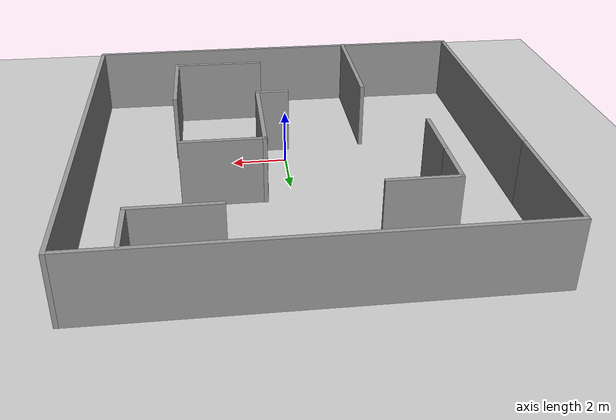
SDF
<sdf version="1.7">
 <world name="default">
  <light name="sun" type="directional">
   <pose>0 0 10 0 -0 0</pose>
   <diffuse>0.8 0.8 0.8 1</diffuse>
   <specular>0.2 0.2 0.2 1</specular>
   <attenuation>
    <range>1000</range>
    <constant>0.9</constant>
    <linear>0.01</linear>
    <quadratic>0.001</quadratic>
   </attenuation>
   <direction>-0.5 0.1 -0.9</direction>
   <spot><inner_angle>0</inner_angle><outer_angle>0</outer_angle><falloff>0</falloff></spot>
  </light>
  <model name="ground_plane">
   <static>1</static>
   <link name="link">
    <collision name="collision">
     <geometry><plane><normal>0 0 1</normal><size>100 100</size></plane></geometry>
     <surface>
      <contact><collide_bitmask>65535</collide_bitmask></contact>
      <friction><ode><mu>100</mu><mu2>50</mu2></ode></friction>
     </surface>
    </collision>
    <visual name="visual">
     <cast_shadows>0</cast_shadows>
     <geometry><plane><normal>0 0 1</normal><size>100 100</size></plane></geometry>
     <material>
      <script><uri>file://media/materials/scripts/gazebo.material</uri><name>Gazebo/Grey</name></script>
     </material>
    </visual>
   </link>
  </model>
  <gravity>0 0 -9.8</gravity>
  <magnetic_field>6e-06 2.3e-05 -4.2e-05</magnetic_field>
  <atmosphere type="adiabatic"/>
  <physics type="ode">
   <max_step_size>0.001</max_step_size>
   <real_time_factor>1</real_time_factor>
   <real_time_update_rate>1000</real_time_update_rate>
  </physics>
  <scene><ambient>0.4 0.4 0.4 1</ambient><background>0.7 0.7 0.7 1</background><shadows>1</shadows></scene>
  <audio><device>default</device></audio>
  <spherical_coordinates>
   <surface_model>EARTH_WGS84</surface_model>
   <latitude_deg>0</latitude_deg>
   <longitude_deg>0</longitude_deg>
   <elevation>0</elevation>
   <heading_deg>0</heading_deg>
  </spherical_coordinates>
  <model name="Untitled">
   <pose>-0.215065 1.51547 0 0 -0 0</pose>
   <link name="Wall_10">
    <collision name="Wall_10_Collision">
     <geometry><box><size>1.25 0.15 2.5</size></box></geometry>
     <pose>0 0 1.25 0 -0 0</pose>
    </collision>
    <visual name="Wall_10_Visual">
     <pose>0 0 1.25 0 -0 0</pose>
     <geometry><box><size>1.25 0.15 2.5</size></box></geometry>
     <material>
      <script><uri>file://media/materials/scripts/gazebo.material</uri><name>Gazebo/Grey</name></script>
      <ambient>1 1 1 1</ambient>
     </material>
     <meta><layer>0</layer></meta>
    </visual>
    <pose>0.612797 -2.49425 0 0 -0 0</pose>
   </link>
   <link name="Wall_11">
    <collision name="Wall_11_Collision">
     <geometry><box><size>3.96482 0.15 2.5</size></box></geometry>
     <pose>0 0 1.25 0 -0 0</pose>
    </collision>
    <visual name="Wall_11_Visual">
     <pose>0 0 1.25 0 -0 0</pose>
     <geometry><box><size>3.96482 0.15 2.5</size></box></geometry>
     <material>
      <script><uri>file://media/materials/scripts/gazebo.material</uri><name>Gazebo/Grey</name></script>
      <ambient>1 1 1 1</ambient>
     </material>
     <meta><layer>0</layer></meta>
    </visual>
    <pose>1.17149 -0.578144 0 0 -0 1.5708</pose>
   </link>
   <link name="Wall_12">
    <collision name="Wall_12_Collision">
     <geometry><box><size>3 0.15 2.5</size></box></geometry>
     <pose>0 0 1.25 0 -0 0</pose>
    </collision>
    <visual name="Wall_12_Visual">
     <pose>0 0 1.25 0 -0 0</pose>
     <geometry><box><size>3 0.15 2.5</size></box></geometry>
     <material>
      <script><uri>file://media/materials/scripts/gazebo.material</uri><name>Gazebo/Grey</name></script>
      <ambient>1 1 1 1</ambient>
     </material>
     <meta><layer>0</layer></meta>
    </visual>
    <pose>2.5878 1.32057 0 0 -0 0</pose>
   </link>
   <link name="Wall_14">
    <collision name="Wall_14_Collision">
     <geometry><box><size>2.5 0.15 2.5</size></box></geometry>
     <pose>0 0 1.25 0 -0 0</pose>
    </collision>
    <visual name="Wall_14_Visual">
     <pose>0 0 1.25 0 -0 0</pose>
     <geometry><box><size>2.5 0.15 2.5</size></box></geometry>
     <material>
      <script><uri>file://media/materials/scripts/gazebo.material</uri><name>Gazebo/Grey</name></script>
      <ambient>1 1 1 1</ambient>
     </material>
     <meta><layer>0</layer></meta>
    </visual>
    <pose>-3.49429 4.51296 0 0 -0 3.14159</pose>
   </link>
   <link name="Wall_15">
    <collision name="Wall_15_Collision">
     <geometry><box><size>2 0.15 2.5</size></box></geometry>
     <pose>0 0 1.25 0 -0 0</pose>
    </collision>
    <visual name="Wall_15_Visual">
     <pose>0 0 1.25 0 -0 0</pose>
     <geometry><box><size>2 0.15 2.5</size></box></geometry>
     <material>
      <script><uri>file://media/materials/scripts/gazebo.material</uri><name>Gazebo/Grey</name></script>
      <ambient>1 1 1 1</ambient>
     </material>
     <meta><layer>0</layer></meta>
    </visual>
    <pose>-4.66929 3.58796 0 0 -0 -1.5708</pose>
   </link>
   <link name="Wall_16">
    <collision name="Wall_16_Collision">
     <geometry><box><size>2.25 0.15 2.5</size></box></geometry>
     <pose>0 0 1.25 0 -0 0</pose>
    </collision>
    <visual name="Wall_16_Visual">
     <pose>0 0 1.25 0 -0 0</pose>
     <geometry><box><size>2.25 0.15 2.5</size></box></geometry>
     <material>
      <script><uri>file://media/materials/scripts/gazebo.material</uri><name>Gazebo/Grey</name></script>
      <ambient>1 1 1 1</ambient>
     </material>
     <meta><layer>0</layer></meta>
    </visual>
    <pose>-4.66929 1.61296 0 0 -0 -1.5708</pose>
   </link>
   <link name="Wall_18">
    <collision name="Wall_18_Collision">
     <geometry><box><size>3.5 0.15 2.5</size></box></geometry>
     <pose>0 0 1.25 0 -0 0</pose>
    </collision>
    <visual name="Wall_18_Visual">
     <pose>0 0 1.25 0 -0 0</pose>
     <geometry><box><size>3.5 0.15 2.5</size></box></geometry>
     <material>
      <script><uri>file://media/materials/scripts/gazebo.material</uri><name>Gazebo/Grey</name></script>
      <ambient>1 1 1 1</ambient>
     </material>
     <meta><layer>0</layer></meta>
    </visual>
    <pose>2.59215 -5.54817 0 0 -0 0</pose>
   </link>
   <link name="Wall_19">
    <collision name="Wall_19_Collision">
     <geometry><box><size>3.5 0.15 2.5</size></box></geometry>
     <pose>0 0 1.25 0 -0 0</pose>
    </collision>
    <visual name="Wall_19_Visual">
     <pose>0 0 1.25 0 -0 0</pose>
     <geometry><box><size>3.5 0.15 2.5</size></box></geometry>
     <material>
      <script><uri>file://media/materials/scripts/gazebo.material</uri><name>Gazebo/Grey</name></script>
      <ambient>1 1 1 1</ambient>
     </material>
     <meta><layer>0</layer></meta>
    </visual>
    <pose>4.26715 -3.87317 0 0 -0 1.5708</pose>
   </link>
   <link name="Wall_21">
    <collision name="Wall_21_Collision">
     <geometry><box><size>3 0.15 2.5</size></box></geometry>
     <pose>0 0 1.25 0 -0 0</pose>
    </collision>
    <visual name="Wall_21_Visual">
     <pose>0 0 1.25 0 -0 0</pose>
     <geometry><box><size>3 0.15 2.5</size></box></geometry>
     <material>
      <script><uri>file://media/materials/scripts/gazebo.material</uri><name>Gazebo/Grey</name></script>
      <ambient>1 1 1 1</ambient>
     </material>
     <meta><layer>0</layer></meta>
    </visual>
    <pose>4.10109 5.25171 0 0 -0 0</pose>
   </link>
   <link name="Wall_22">
    <collision name="Wall_22_Collision">
     <geometry><box><size>2 0.15 2.5</size></box></geometry>
     <pose>0 0 1.25 0 -0 0</pose>
    </collision>
    <visual name="Wall_22_Visual">
     <pose>0 0 1.25 0 -0 0</pose>
     <geometry><box><size>2 0.15 2.5</size></box></geometry>
     <material>
      <script><uri>file://media/materials/scripts/gazebo.material</uri><name>Gazebo/Grey</name></script>
      <ambient>1 1 1 1</ambient>
     </material>
     <meta><layer>0</layer></meta>
    </visual>
    <pose>5.52609 6.17671 0 0 -0 1.5708</pose>
   </link>
   <link name="Wall_24">
    <collision name="Wall_24_Collision">
     <geometry><box><size>4.75 0.15 2.5</size></box></geometry>
     <pose>0 0 1.25 0 -0 0</pose>
    </collision>
    <visual name="Wall_24_Visual">
     <pose>0 0 1.25 0 -0 0</pose>
     <geometry><box><size>4.75 0.15 2.5</size></box></geometry>
     <material>
      <script><uri>file://media/materials/scripts/gazebo.material</uri><name>Gazebo/Grey</name></script>
      <ambient>1 1 1 1</ambient>
     </material>
     <meta><layer>0</layer></meta>
    </visual>
    <pose>-2.89527 -4.88305 0 0 -0 -1.5708</pose>
   </link>
   <link name="Wall_3">
    <collision name="Wall_3_Collision">
     <geometry><box><size>9.75 0.15 2.5</size></box></geometry>
     <pose>0 0 1.25 0 -0 0</pose>
    </collision>
    <visual name="Wall_3_Visual">
     <pose>0 0 1.25 0 -0 0</pose>
     <geometry><box><size>9.75 0.15 2.5</size></box></geometry>
     <material>
      <script><uri>file://media/materials/scripts/gazebo.material</uri><name>Gazebo/Grey</name></script>
      <ambient>1 1 1 1</ambient>
     </material>
     <meta><layer>0</layer></meta>
    </visual>
    <pose>-7.425 -2.36695 0 0 -0 -1.5708</pose>
   </link>
   <link name="Wall_4">
    <collision name="Wall_4_Collision">
     <geometry><box><size>15 0.15 2.5</size></box></geometry>
     <pose>0 0 1.25 0 -0 0</pose>
    </collision>
    <visual name="Wall_4_Visual">
     <pose>0 0 1.25 0 -0 0</pose>
     <geometry><box><size>15 0.15 2.5</size></box></geometry>
     <material>
      <script><uri>file://media/materials/scripts/gazebo.material</uri><name>Gazebo/Grey</name></script>
      <ambient>1 1 1 1</ambient>
     </material>
     <meta><layer>0</layer></meta>
    </visual>
    <pose>-0 -7.16695 0 0 -0 0</pose>
   </link>
   <link name="Wall_5">
    <collision name="Wall_5_Collision">
     <geometry><box><size>14.5 0.15 2.5</size></box></geometry>
     <pose>0 0 1.25 0 -0 0</pose>
    </collision>
    <visual name="Wall_5_Visual">
     <pose>0 0 1.25 0 -0 0</pose>
     <geometry><box><size>14.5 0.15 2.5</size></box></geometry>
     <material>
      <script><uri>file://media/materials/scripts/gazebo.material</uri><name>Gazebo/Grey</name></script>
      <ambient>1 1 1 1</ambient>
     </material>
     <meta><layer>0</layer></meta>
    </visual>
    <pose>7.425 0.008053 0 0 -0 1.5708</pose>
   </link>
   <link name="Wall_6">
    <collision name="Wall_6_Collision">
     <geometry><box><size>15 0.15 2.5</size></box></geometry>
     <pose>0 0 1.25 0 -0 0</pose>
    </collision>
    <visual name="Wall_6_Visual">
     <pose>0 0 1.25 0 -0 0</pose>
     <geometry><box><size>15 0.15 2.5</size></box></geometry>
     <material>
      <script><uri>file://media/materials/scripts/gazebo.material</uri><name>Gazebo/Grey</name></script>
      <ambient>1 1 1 1</ambient>
     </material>
     <meta><layer>0</layer></meta>
    </visual>
    <pose>-0 7.18305 0 0 -0 3.14159</pose>
   </link>
   <link name="Wall_7">
    <collision name="Wall_7_Collision">
     <geometry><box><size>4.9 0.15 2.5</size></box></geometry>
     <pose>0 0 1.25 0 -0 0</pose>
    </collision>
    <visual name="Wall_7_Visual">
     <pose>0 0 1.25 0 -0 0</pose>
     <geometry><box><size>4.9 0.15 2.5</size></box></geometry>
     <material>
      <script><uri>file://media/materials/scripts/gazebo.material</uri><name>Gazebo/Grey</name></script>
      <ambient>1 1 1 1</ambient>
     </material>
     <meta><layer>0</layer></meta>
    </visual>
    <pose>-7.425 4.80805 0 0 -0 -1.5708</pose>
   </link>
   <static>1</static>
  </model>
 </world>
</sdf>
